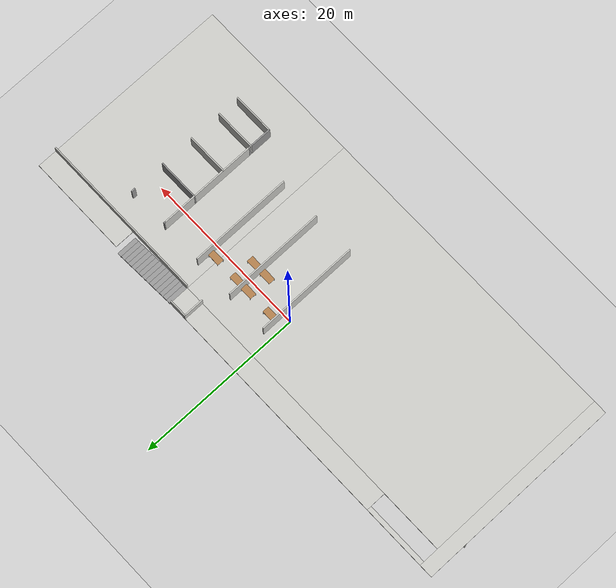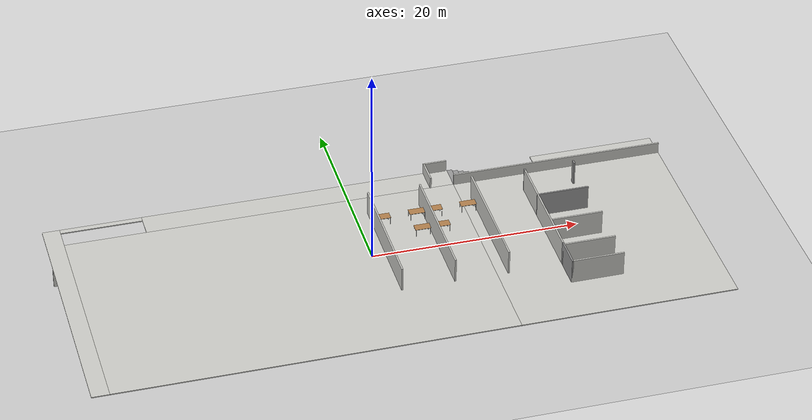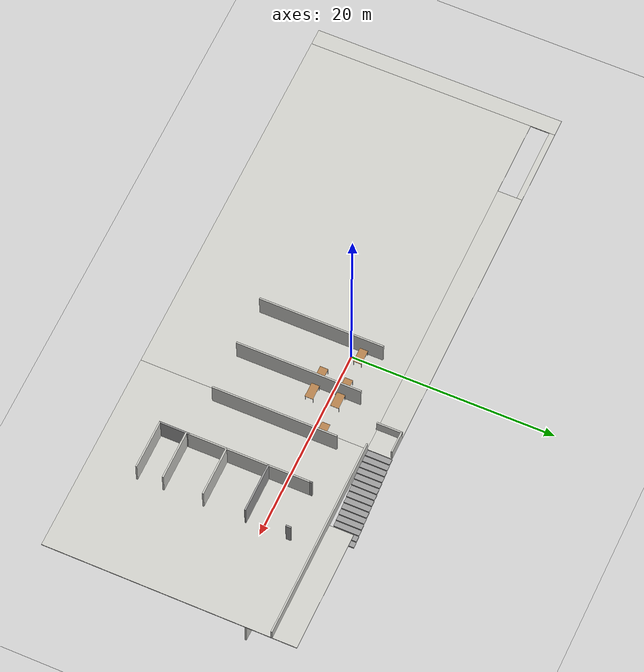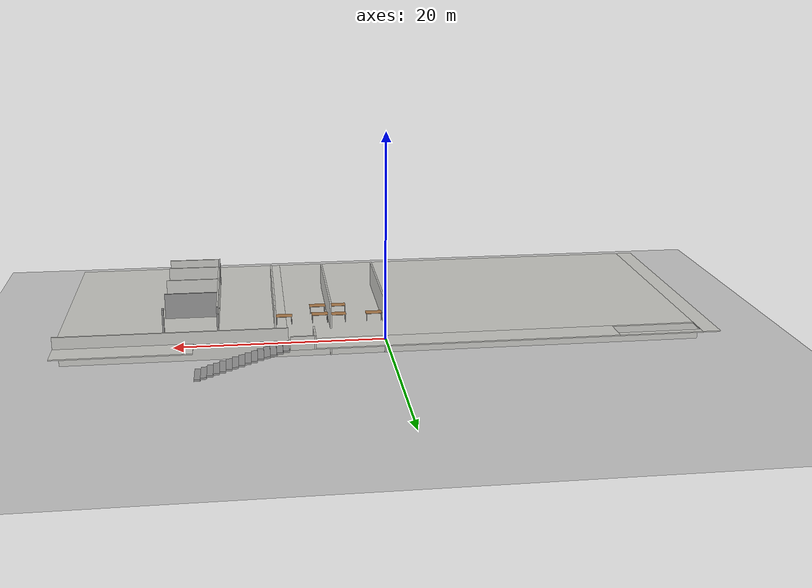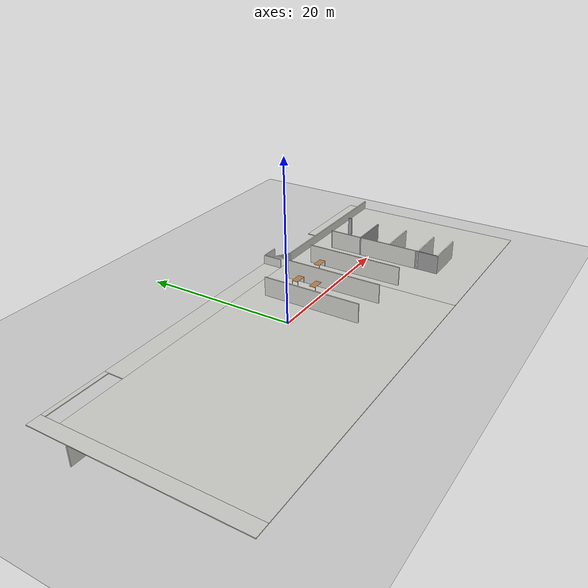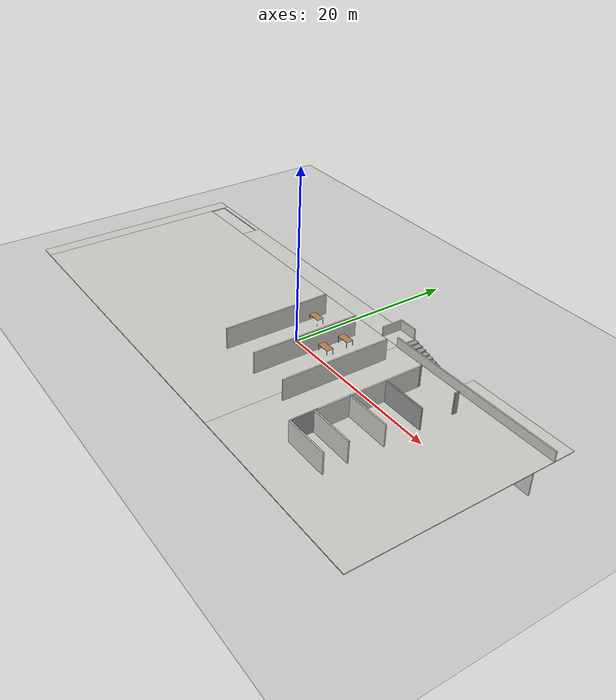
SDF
<sdf version="1.6">
 <world name="default">
  <model name="ground_plane">
   <static>1</static>
   <link name="link">
    <collision name="collision">
     <geometry><plane><normal>0 0 1</normal><size>100 100</size></plane></geometry>
     <surface>
      <contact><collide_bitmask>65535</collide_bitmask></contact>
      <friction><ode><mu>100</mu><mu2>50</mu2></ode></friction>
     </surface>
    </collision>
    <visual name="visual">
     <cast_shadows>0</cast_shadows>
     <geometry><plane><normal>0 0 1</normal><size>100 100</size></plane></geometry>
     <material>
      <script><uri>file://media/materials/scripts/gazebo.material</uri><name>Gazebo/Grey</name></script>
     </material>
    </visual>
   </link>
  </model>
  <model name="ifes_bloco_m">
   <pose>0.003818 -4.2564 0 0 -0 0</pose>
   <link name="Floor_0">
    <pose>0.157128 0.038162 2.5 0 -0 0</pose>
    <visual name="Floor_0_Visual_0">
     <pose>-28.976 0 0.05 0 -0 0</pose>
     <geometry><box><size>1.64864 24.7557 0.1</size></box></geometry>
     <material>
      <script><uri>file://media/materials/scripts/gazebo.material</uri><name>Gazebo/CeilingTiled</name></script>
      <ambient>1 1 1 1</ambient>
     </material>
     <meta><layer>1</layer></meta>
    </visual>
    <collision name="Floor_0_Collision_0">
     <geometry><box><size>1.64864 24.7557 0.1</size></box></geometry>
     <pose>-28.976 0 0.05 0 -0 0</pose>
    </collision>
    <visual name="Floor_0_Visual_1">
     <pose>-9.42841 -1.21298 0.05 0 -0 0</pose>
     <geometry><box><size>37.4466 22.3297 0.1</size></box></geometry>
     <material>
      <script><uri>file://media/materials/scripts/gazebo.material</uri><name>Gazebo/CeilingTiled</name></script>
      <ambient>1 1 1 1</ambient>
     </material>
     <meta><layer>1</layer></meta>
    </visual>
    <collision name="Floor_0_Collision_1">
     <geometry><box><size>37.4466 22.3297 0.1</size></box></geometry>
     <pose>-9.42841 -1.21298 0.05 0 -0 0</pose>
    </collision>
    <visual name="Floor_0_Visual_2">
     <pose>19.5476 -1.22768 0.05 0 -0 0</pose>
     <geometry><box><size>20.5055 22.3003 0.1</size></box></geometry>
     <material>
      <script><uri>file://media/materials/scripts/gazebo.material</uri><name>Gazebo/CeilingTiled</name></script>
      <ambient>1 1 1 1</ambient>
     </material>
     <meta><layer>1</layer></meta>
    </visual>
    <collision name="Floor_0_Collision_2">
     <geometry><box><size>20.5055 22.3003 0.1</size></box></geometry>
     <pose>19.5476 -1.22768 0.05 0 -0 0</pose>
    </collision>
    <visual name="Floor_0_Visual_3">
     <pose>23.7241 11.1502 0.05 0 -0 0</pose>
     <geometry><box><size>12.1525 2.45536 0.1</size></box></geometry>
     <material>
      <script><uri>file://media/materials/scripts/gazebo.material</uri><name>Gazebo/CeilingTiled</name></script>
      <ambient>1 1 1 1</ambient>
     </material>
     <meta><layer>1</layer></meta>
    </visual>
    <collision name="Floor_0_Collision_3">
     <geometry><box><size>12.1525 2.45536 0.1</size></box></geometry>
     <pose>23.7241 11.1502 0.05 0 -0 0</pose>
    </collision>
    <visual name="Floor_0_Visual_4">
     <pose>-5.55039 11.1649 0.05 0 -0 0</pose>
     <geometry><box><size>29.6905 2.42596 0.1</size></box></geometry>
     <material>
      <script><uri>file://media/materials/scripts/gazebo.material</uri><name>Gazebo/CeilingTiled</name></script>
      <ambient>1 1 1 1</ambient>
     </material>
     <meta><layer>1</layer></meta>
    </visual>
    <collision name="Floor_0_Collision_4">
     <geometry><box><size>29.6905 2.42596 0.1</size></box></geometry>
     <pose>-5.55039 11.1649 0.05 0 -0 0</pose>
    </collision>
    <visual name="Floor_0_Visual_5">
     <pose>-24.2737 12.1043 0.05 0 -0 0</pose>
     <geometry><box><size>7.75603 0.546998 0.1</size></box></geometry>
     <material>
      <script><uri>file://media/materials/scripts/gazebo.material</uri><name>Gazebo/CeilingTiled</name></script>
      <ambient>1 1 1 1</ambient>
     </material>
     <meta><layer>1</layer></meta>
    </visual>
    <collision name="Floor_0_Collision_5">
     <geometry><box><size>7.75603 0.546998 0.1</size></box></geometry>
     <pose>-24.2737 12.1043 0.05 0 -0 0</pose>
    </collision>
   </link>
   <link name="Stairs_1">
    <visual name="Stairs_1_Visual_0">
     <pose>17.5266 11.2024 0.083333 0 -0 -1.5708</pose>
     <geometry><box><size>2.4835 0.556867 0.166667</size></box></geometry>
     <material>
      <script><uri>file://media/materials/scripts/gazebo.material</uri><name>Gazebo/Grey</name></script>
      <ambient>1 1 1 1</ambient>
     </material>
     <meta><layer>0</layer></meta>
    </visual>
    <collision name="Stairs_1_Collision_0">
     <geometry><box><size>2.4835 0.556867 0.166667</size></box></geometry>
     <pose>17.5266 11.2024 0.083333 0 -0 -1.5708</pose>
    </collision>
    <visual name="Stairs_1_Visual_1">
     <pose>16.9697 11.2024 0.25 0 -0 -1.5708</pose>
     <geometry><box><size>2.4835 0.556867 0.166667</size></box></geometry>
     <material>
      <script><uri>file://media/materials/scripts/gazebo.material</uri><name>Gazebo/Grey</name></script>
      <ambient>1 1 1 1</ambient>
     </material>
     <meta><layer>0</layer></meta>
    </visual>
    <collision name="Stairs_1_Collision_1">
     <geometry><box><size>2.4835 0.556867 0.166667</size></box></geometry>
     <pose>16.9697 11.2024 0.25 0 -0 -1.5708</pose>
    </collision>
    <visual name="Stairs_1_Visual_2">
     <pose>16.4128 11.2024 0.416667 0 -0 -1.5708</pose>
     <geometry><box><size>2.4835 0.556867 0.166667</size></box></geometry>
     <material>
      <script><uri>file://media/materials/scripts/gazebo.material</uri><name>Gazebo/Grey</name></script>
      <ambient>1 1 1 1</ambient>
     </material>
     <meta><layer>0</layer></meta>
    </visual>
    <collision name="Stairs_1_Collision_2">
     <geometry><box><size>2.4835 0.556867 0.166667</size></box></geometry>
     <pose>16.4128 11.2024 0.416667 0 -0 -1.5708</pose>
    </collision>
    <visual name="Stairs_1_Visual_3">
     <pose>15.856 11.2024 0.583333 0 -0 -1.5708</pose>
     <geometry><box><size>2.4835 0.556867 0.166667</size></box></geometry>
     <material>
      <script><uri>file://media/materials/scripts/gazebo.material</uri><name>Gazebo/Grey</name></script>
      <ambient>1 1 1 1</ambient>
     </material>
     <meta><layer>0</layer></meta>
    </visual>
    <collision name="Stairs_1_Collision_3">
     <geometry><box><size>2.4835 0.556867 0.166667</size></box></geometry>
     <pose>15.856 11.2024 0.583333 0 -0 -1.5708</pose>
    </collision>
    <visual name="Stairs_1_Visual_4">
     <pose>15.2991 11.2024 0.75 0 -0 -1.5708</pose>
     <geometry><box><size>2.4835 0.556867 0.166667</size></box></geometry>
     <material>
      <script><uri>file://media/materials/scripts/gazebo.material</uri><name>Gazebo/Grey</name></script>
      <ambient>1 1 1 1</ambient>
     </material>
     <meta><layer>0</layer></meta>
    </visual>
    <collision name="Stairs_1_Collision_4">
     <geometry><box><size>2.4835 0.556867 0.166667</size></box></geometry>
     <pose>15.2991 11.2024 0.75 0 -0 -1.5708</pose>
    </collision>
    <visual name="Stairs_1_Visual_5">
     <pose>14.7422 11.2024 0.916667 0 -0 -1.5708</pose>
     <geometry><box><size>2.4835 0.556867 0.166667</size></box></geometry>
     <material>
      <script><uri>file://media/materials/scripts/gazebo.material</uri><name>Gazebo/Grey</name></script>
      <ambient>1 1 1 1</ambient>
     </material>
     <meta><layer>0</layer></meta>
    </visual>
    <collision name="Stairs_1_Collision_5">
     <geometry><box><size>2.4835 0.556867 0.166667</size></box></geometry>
     <pose>14.7422 11.2024 0.916667 0 -0 -1.5708</pose>
    </collision>
    <visual name="Stairs_1_Visual_6">
     <pose>14.1854 11.2024 1.08333 0 -0 -1.5708</pose>
     <geometry><box><size>2.4835 0.556867 0.166667</size></box></geometry>
     <material>
      <script><uri>file://media/materials/scripts/gazebo.material</uri><name>Gazebo/Grey</name></script>
      <ambient>1 1 1 1</ambient>
     </material>
     <meta><layer>0</layer></meta>
    </visual>
    <collision name="Stairs_1_Collision_6">
     <geometry><box><size>2.4835 0.556867 0.166667</size></box></geometry>
     <pose>14.1854 11.2024 1.08333 0 -0 -1.5708</pose>
    </collision>
    <visual name="Stairs_1_Visual_7">
     <pose>13.6285 11.2024 1.25 0 -0 -1.5708</pose>
     <geometry><box><size>2.4835 0.556867 0.166667</size></box></geometry>
     <material>
      <script><uri>file://media/materials/scripts/gazebo.material</uri><name>Gazebo/Grey</name></script>
      <ambient>1 1 1 1</ambient>
     </material>
     <meta><layer>0</layer></meta>
    </visual>
    <collision name="Stairs_1_Collision_7">
     <geometry><box><size>2.4835 0.556867 0.166667</size></box></geometry>
     <pose>13.6285 11.2024 1.25 0 -0 -1.5708</pose>
    </collision>
    <visual name="Stairs_1_Visual_8">
     <pose>13.0716 11.2024 1.41667 0 -0 -1.5708</pose>
     <geometry><box><size>2.4835 0.556867 0.166667</size></box></geometry>
     <material>
      <script><uri>file://media/materials/scripts/gazebo.material</uri><name>Gazebo/Grey</name></script>
      <ambient>1 1 1 1</ambient>
     </material>
     <meta><layer>0</layer></meta>
    </visual>
    <collision name="Stairs_1_Collision_8">
     <geometry><box><size>2.4835 0.556867 0.166667</size></box></geometry>
     <pose>13.0716 11.2024 1.41667 0 -0 -1.5708</pose>
    </collision>
    <visual name="Stairs_1_Visual_9">
     <pose>12.5148 11.2024 1.58333 0 -0 -1.5708</pose>
     <geometry><box><size>2.4835 0.556867 0.166667</size></box></geometry>
     <material>
      <script><uri>file://media/materials/scripts/gazebo.material</uri><name>Gazebo/Grey</name></script>
      <ambient>1 1 1 1</ambient>
     </material>
     <meta><layer>0</layer></meta>
    </visual>
    <collision name="Stairs_1_Collision_9">
     <geometry><box><size>2.4835 0.556867 0.166667</size></box></geometry>
     <pose>12.5148 11.2024 1.58333 0 -0 -1.5708</pose>
    </collision>
    <visual name="Stairs_1_Visual_10">
     <pose>11.9579 11.2024 1.75 0 -0 -1.5708</pose>
     <geometry><box><size>2.4835 0.556867 0.166667</size></box></geometry>
     <material>
      <script><uri>file://media/materials/scripts/gazebo.material</uri><name>Gazebo/Grey</name></script>
      <ambient>1 1 1 1</ambient>
     </material>
     <meta><layer>0</layer></meta>
    </visual>
    <collision name="Stairs_1_Collision_10">
     <geometry><box><size>2.4835 0.556867 0.166667</size></box></geometry>
     <pose>11.9579 11.2024 1.75 0 -0 -1.5708</pose>
    </collision>
    <visual name="Stairs_1_Visual_11">
     <pose>11.401 11.2024 1.91667 0 -0 -1.5708</pose>
     <geometry><box><size>2.4835 0.556867 0.166667</size></box></geometry>
     <material>
      <script><uri>file://media/materials/scripts/gazebo.material</uri><name>Gazebo/Grey</name></script>
      <ambient>1 1 1 1</ambient>
     </material>
     <meta><layer>0</layer></meta>
    </visual>
    <collision name="Stairs_1_Collision_11">
     <geometry><box><size>2.4835 0.556867 0.166667</size></box></geometry>
     <pose>11.401 11.2024 1.91667 0 -0 -1.5708</pose>
    </collision>
    <visual name="Stairs_1_Visual_12">
     <pose>10.8442 11.2024 2.08333 0 -0 -1.5708</pose>
     <geometry><box><size>2.4835 0.556867 0.166667</size></box></geometry>
     <material>
      <script><uri>file://media/materials/scripts/gazebo.material</uri><name>Gazebo/Grey</name></script>
      <ambient>1 1 1 1</ambient>
     </material>
     <meta><layer>0</layer></meta>
    </visual>
    <collision name="Stairs_1_Collision_12">
     <geometry><box><size>2.4835 0.556867 0.166667</size></box></geometry>
     <pose>10.8442 11.2024 2.08333 0 -0 -1.5708</pose>
    </collision>
    <visual name="Stairs_1_Visual_13">
     <pose>10.2873 11.2024 2.25 0 -0 -1.5708</pose>
     <geometry><box><size>2.4835 0.556867 0.166667</size></box></geometry>
     <material>
      <script><uri>file://media/materials/scripts/gazebo.material</uri><name>Gazebo/Grey</name></script>
      <ambient>1 1 1 1</ambient>
     </material>
     <meta><layer>0</layer></meta>
    </visual>
    <collision name="Stairs_1_Collision_13">
     <geometry><box><size>2.4835 0.556867 0.166667</size></box></geometry>
     <pose>10.2873 11.2024 2.25 0 -0 -1.5708</pose>
    </collision>
    <visual name="Stairs_1_Visual_14">
     <pose>9.73044 11.2024 2.41667 0 -0 -1.5708</pose>
     <geometry><box><size>2.4835 0.556867 0.166667</size></box></geometry>
     <material>
      <script><uri>file://media/materials/scripts/gazebo.material</uri><name>Gazebo/Grey</name></script>
      <ambient>1 1 1 1</ambient>
     </material>
     <meta><layer>0</layer></meta>
    </visual>
    <collision name="Stairs_1_Collision_14">
     <geometry><box><size>2.4835 0.556867 0.166667</size></box></geometry>
     <pose>9.73044 11.2024 2.41667 0 -0 -1.5708</pose>
    </collision>
   </link>
   <link name="Wall_0">
    <collision name="Wall_0_Collision">
     <geometry><box><size>59.5 0.15 2.5</size></box></geometry>
     <pose>0 0 1.25 0 -0 0</pose>
    </collision>
    <visual name="Wall_0_Visual">
     <pose>0 0 1.25 0 -0 0</pose>
     <geometry><box><size>59.5 0.15 2.5</size></box></geometry>
     <material>
      <script><uri>file://media/materials/scripts/gazebo.material</uri><name>Gazebo/CeilingTiled</name></script>
      <ambient>1 1 1 1</ambient>
     </material>
     <meta><layer>0</layer></meta>
    </visual>
    <pose>0.181948 7.4609 0 0 -0 0</pose>
   </link>
   <link name="Wall_101">
    <collision name="Wall_101_Collision">
     <geometry><box><size>5 0.15 2.5</size></box></geometry>
     <pose>0 0 1.25 0 -0 0</pose>
    </collision>
    <visual name="Wall_101_Visual">
     <pose>0 0 1.25 0 -0 0</pose>
     <geometry><box><size>5 0.15 2.5</size></box></geometry>
     <material>
      <script><uri>file://media/materials/scripts/gazebo.material</uri><name>Gazebo/CeilingTiled</name></script>
      <ambient>1 1 1 1</ambient>
     </material>
     <meta><layer>1</layer></meta>
    </visual>
    <pose>18.1581 -0.902525 2.5 0 -0 3.14159</pose>
   </link>
   <link name="Wall_110">
    <collision name="Wall_110_Collision">
     <geometry><box><size>2.5 0.15 1.25</size></box></geometry>
     <pose>0 0 0.625 0 -0 0</pose>
    </collision>
    <visual name="Wall_110_Visual">
     <pose>0 0 0.625 0 -0 0</pose>
     <geometry><box><size>2.5 0.15 1.25</size></box></geometry>
     <material>
      <script><uri>file://media/materials/scripts/gazebo.material</uri><name>Gazebo/CeilingTiled</name></script>
      <ambient>0.921569 0.807843 0.615686 1</ambient>
     </material>
     <meta><layer>1</layer></meta>
    </visual>
    <pose>7.19935 11.1661 2.5 0 -0 1.5708</pose>
   </link>
   <link name="Wall_111">
    <collision name="Wall_111_Collision">
     <geometry><box><size>2.25 0.15 1.25</size></box></geometry>
     <pose>0 0 0.625 0 -0 0</pose>
    </collision>
    <visual name="Wall_111_Visual">
     <pose>0 0 0.625 0 -0 0</pose>
     <geometry><box><size>2.25 0.15 1.25</size></box></geometry>
     <material>
      <script><uri>file://media/materials/scripts/gazebo.material</uri><name>Gazebo/CeilingTiled</name></script>
      <ambient>0.921569 0.807843 0.615686 1</ambient>
     </material>
     <meta><layer>1</layer></meta>
    </visual>
    <pose>8.24935 12.3411 2.5 0 -0 0</pose>
   </link>
   <link name="Wall_115">
    <collision name="Wall_115_Collision">
     <geometry><box><size>20.5 0.15 1.2</size></box></geometry>
     <pose>0 0 0.6 0 -0 0</pose>
    </collision>
    <visual name="Wall_115_Visual">
     <pose>0 0 0.6 0 -0 0</pose>
     <geometry><box><size>20.5 0.15 1.2</size></box></geometry>
     <material>
      <script><uri>file://media/materials/scripts/gazebo.material</uri><name>Gazebo/CeilingTiled</name></script>
      <ambient>0.921569 0.807843 0.615686 1</ambient>
     </material>
     <meta><layer>1</layer></meta>
    </visual>
    <pose>19.7014 9.98264 2.5 0 -0 -0.000737</pose>
   </link>
   <link name="Wall_159">
    <collision name="Wall_159_Collision">
     <geometry><box><size>0.5 0.15 2.5</size></box></geometry>
     <pose>0 0 1.25 0 -0 0</pose>
    </collision>
    <visual name="Wall_159_Visual">
     <pose>0 0 1.25 0 -0 0</pose>
     <geometry><box><size>0.5 0.15 2.5</size></box></geometry>
     <material>
      <script><uri>file://media/materials/scripts/gazebo.material</uri><name>Gazebo/Grey</name></script>
      <ambient>1 1 1 1</ambient>
     </material>
     <meta><layer>1</layer></meta>
    </visual>
    <pose>20.5318 7.34297 2.5 0 -0 -1.5708</pose>
   </link>
   <link name="Wall_28">
    <collision name="Wall_28_Collision">
     <geometry><box><size>0.5 0.15 2.5</size></box></geometry>
     <pose>0 0 1.25 0 -0 0</pose>
    </collision>
    <visual name="Wall_28_Visual">
     <pose>0 0 1.25 0 -0 0</pose>
     <geometry><box><size>0.5 0.15 2.5</size></box></geometry>
     <material>
      <script><uri>file://media/materials/scripts/gazebo.material</uri><name>Gazebo/Grey</name></script>
      <ambient>1 1 1 1</ambient>
     </material>
     <meta><layer>0</layer></meta>
    </visual>
    <pose>15.6425 -7.18425 0 0 -0 0</pose>
   </link>
   <link name="Wall_29">
    <collision name="Wall_29_Collision">
     <geometry><box><size>6 0.15 2.5</size></box></geometry>
     <pose>0 0 1.25 0 -0 0</pose>
    </collision>
    <visual name="Wall_29_Visual">
     <pose>0 0 1.25 0 -0 0</pose>
     <geometry><box><size>6 0.15 2.5</size></box></geometry>
     <material>
      <script><uri>file://media/materials/scripts/gazebo.material</uri><name>Gazebo/CeilingTiled</name></script>
      <ambient>1 1 1 1</ambient>
     </material>
     <meta><layer>0</layer></meta>
    </visual>
    <pose>18.7425 -7.18425 0 0 -0 0</pose>
   </link>
   <link name="Wall_36">
    <collision name="Wall_36_Collision">
     <geometry><box><size>12 0.15 2.5</size></box></geometry>
     <pose>0 0 1.25 0 -0 0</pose>
    </collision>
    <visual name="Wall_36_Visual">
     <pose>0 0 1.25 0 -0 0</pose>
     <geometry><box><size>12 0.15 2.5</size></box></geometry>
     <material>
      <script><uri>file://media/materials/scripts/gazebo.material</uri><name>Gazebo/CeilingTiled</name></script>
      <ambient>1 1 1 1</ambient>
     </material>
     <meta><layer>0</layer></meta>
    </visual>
    <pose>15.6938 1.3493 0 0 -0 1.5708</pose>
   </link>
   <link name="Wall_37">
    <collision name="Wall_37_Collision">
     <geometry><box><size>0.25 0.15 2.5</size></box></geometry>
     <pose>0 0 1.25 0 -0 0</pose>
    </collision>
    <visual name="Wall_37_Visual">
     <pose>0 0 1.25 0 -0 0</pose>
     <geometry><box><size>0.25 0.15 2.5</size></box></geometry>
     <material>
      <script><uri>file://media/materials/scripts/gazebo.material</uri><name>Gazebo/Grey</name></script>
      <ambient>1 1 1 1</ambient>
     </material>
     <meta><layer>0</layer></meta>
    </visual>
    <pose>15.6938 7.3243 0 0 -0 1.5708</pose>
   </link>
   <link name="Wall_39">
    <collision name="Wall_39_Collision">
     <geometry><box><size>12.25 0.15 2.5</size></box></geometry>
     <pose>0 0 1.25 0 -0 0</pose>
    </collision>
    <visual name="Wall_39_Visual">
     <pose>0 0 1.25 0 -0 0</pose>
     <geometry><box><size>12.25 0.15 2.5</size></box></geometry>
     <material>
      <script><uri>file://media/materials/scripts/gazebo.material</uri><name>Gazebo/CeilingTiled</name></script>
      <ambient>1 1 1 1</ambient>
     </material>
     <meta><layer>0</layer></meta>
    </visual>
    <pose>10.5217 1.4187 0 0 -0 -1.5708</pose>
   </link>
   <link name="Wall_41">
    <collision name="Wall_41_Collision">
     <geometry><box><size>12.25 0.15 2.5</size></box></geometry>
     <pose>0 0 1.25 0 -0 0</pose>
    </collision>
    <visual name="Wall_41_Visual">
     <pose>0 0 1.25 0 -0 0</pose>
     <geometry><box><size>12.25 0.15 2.5</size></box></geometry>
     <material>
      <script><uri>file://media/materials/scripts/gazebo.material</uri><name>Gazebo/CeilingTiled</name></script>
      <ambient>1 1 1 1</ambient>
     </material>
     <meta><layer>0</layer></meta>
    </visual>
    <pose>5.47302 1.49457 0 0 -0 1.5708</pose>
   </link>
   <link name="Wall_43">
    <collision name="Wall_43_Collision">
     <geometry><box><size>12.25 0.15 2.5</size></box></geometry>
     <pose>0 0 1.25 0 -0 0</pose>
    </collision>
    <visual name="Wall_43_Visual">
     <pose>0 0 1.25 0 -0 0</pose>
     <geometry><box><size>12.25 0.15 2.5</size></box></geometry>
     <material>
      <script><uri>file://media/materials/scripts/gazebo.material</uri><name>Gazebo/CeilingTiled</name></script>
      <ambient>1 1 1 1</ambient>
     </material>
     <meta><layer>0</layer></meta>
    </visual>
    <pose>0.445579 1.47106 0 0 -0 -1.5708</pose>
   </link>
   <link name="Wall_80">
    <collision name="Wall_80_Collision">
     <geometry><box><size>12 0.15 2.5</size></box></geometry>
     <pose>0 0 1.25 0 -0 0</pose>
    </collision>
    <visual name="Wall_80_Visual">
     <pose>0 0 1.25 0 -0 0</pose>
     <geometry><box><size>12 0.15 2.5</size></box></geometry>
     <material>
      <script><uri>file://media/materials/scripts/gazebo.material</uri><name>Gazebo/CeilingTiled</name></script>
      <ambient>1 1 1 1</ambient>
     </material>
     <meta><layer>1</layer></meta>
    </visual>
    <pose>15.6938 1.3493 2.5 0 -0 1.5708</pose>
   </link>
   <link name="Wall_81">
    <collision name="Wall_81_Collision">
     <geometry><box><size>0.25 0.15 2.5</size></box></geometry>
     <pose>0 0 1.25 0 -0 0</pose>
    </collision>
    <visual name="Wall_81_Visual">
     <pose>0 0 1.25 0 -0 0</pose>
     <geometry><box><size>0.25 0.15 2.5</size></box></geometry>
     <material>
      <script><uri>file://media/materials/scripts/gazebo.material</uri><name>Gazebo/Grey</name></script>
      <ambient>1 1 1 1</ambient>
     </material>
     <meta><layer>1</layer></meta>
    </visual>
    <pose>15.6938 7.3243 2.5 0 -0 1.5708</pose>
   </link>
   <link name="Wall_82">
    <collision name="Wall_82_Collision">
     <geometry><box><size>12.25 0.15 2.5</size></box></geometry>
     <pose>0 0 1.25 0 -0 0</pose>
    </collision>
    <visual name="Wall_82_Visual">
     <pose>0 0 1.25 0 -0 0</pose>
     <geometry><box><size>12.25 0.15 2.5</size></box></geometry>
     <material>
      <script><uri>file://media/materials/scripts/gazebo.material</uri><name>Gazebo/CeilingTiled</name></script>
      <ambient>1 1 1 1</ambient>
     </material>
     <meta><layer>1</layer></meta>
    </visual>
    <pose>10.5217 1.4187 2.5 0 -0 -1.5708</pose>
   </link>
   <link name="Wall_83">
    <collision name="Wall_83_Collision">
     <geometry><box><size>12.25 0.15 2.5</size></box></geometry>
     <pose>0 0 1.25 0 -0 0</pose>
    </collision>
    <visual name="Wall_83_Visual">
     <pose>0 0 1.25 0 -0 0</pose>
     <geometry><box><size>12.25 0.15 2.5</size></box></geometry>
     <material>
      <script><uri>file://media/materials/scripts/gazebo.material</uri><name>Gazebo/CeilingTiled</name></script>
      <ambient>1 1 1 1</ambient>
     </material>
     <meta><layer>1</layer></meta>
    </visual>
    <pose>5.47302 1.49457 2.5 0 -0 1.5708</pose>
   </link>
   <link name="Wall_84">
    <collision name="Wall_84_Collision">
     <geometry><box><size>12.25 0.15 2.5</size></box></geometry>
     <pose>0 0 1.25 0 -0 0</pose>
    </collision>
    <visual name="Wall_84_Visual">
     <pose>0 0 1.25 0 -0 0</pose>
     <geometry><box><size>12.25 0.15 2.5</size></box></geometry>
     <material>
      <script><uri>file://media/materials/scripts/gazebo.material</uri><name>Gazebo/CeilingTiled</name></script>
      <ambient>1 1 1 1</ambient>
     </material>
     <meta><layer>1</layer></meta>
    </visual>
    <pose>0.445579 1.47106 2.5 0 -0 -1.5708</pose>
   </link>
   <link name="Wall_91">
    <collision name="Wall_91_Collision">
     <geometry><box><size>3 0.15 2.5</size></box></geometry>
     <pose>0 0 1.25 0 -0 0</pose>
    </collision>
    <visual name="Wall_91_Visual">
     <pose>0 0 1.25 0 -0 0</pose>
     <geometry><box><size>3 0.15 2.5</size></box></geometry>
     <material>
      <script><uri>file://media/materials/scripts/gazebo.material</uri><name>Gazebo/Grey</name></script>
      <ambient>1 1 1 1</ambient>
     </material>
     <meta><layer>1</layer></meta>
    </visual>
    <pose>15.6938 -6.0007 2.5 0 -0 -1.5708</pose>
   </link>
   <link name="Wall_92">
    <collision name="Wall_92_Collision">
     <geometry><box><size>5 0.15 2.5</size></box></geometry>
     <pose>0 0 1.25 0 -0 0</pose>
    </collision>
    <visual name="Wall_92_Visual">
     <pose>0 0 1.25 0 -0 0</pose>
     <geometry><box><size>5 0.15 2.5</size></box></geometry>
     <material>
      <script><uri>file://media/materials/scripts/gazebo.material</uri><name>Gazebo/CeilingTiled</name></script>
      <ambient>1 1 1 1</ambient>
     </material>
     <meta><layer>1</layer></meta>
    </visual>
    <pose>18.1188 -7.4257 2.5 0 -0 0</pose>
   </link>
   <link name="Wall_94">
    <collision name="Wall_94_Collision">
     <geometry><box><size>5 0.15 2.5</size></box></geometry>
     <pose>0 0 1.25 0 -0 0</pose>
    </collision>
    <visual name="Wall_94_Visual">
     <pose>0 0 1.25 0 -0 0</pose>
     <geometry><box><size>5 0.15 2.5</size></box></geometry>
     <material>
      <script><uri>file://media/materials/scripts/gazebo.material</uri><name>Gazebo/CeilingTiled</name></script>
      <ambient>1 1 1 1</ambient>
     </material>
     <meta><layer>1</layer></meta>
    </visual>
    <pose>18.1188 -4.8257 2.5 0 -0 3.14159</pose>
   </link>
   <link name="Wall_98">
    <collision name="Wall_98_Collision">
     <geometry><box><size>5 0.15 2.5</size></box></geometry>
     <pose>0 0 1.25 0 -0 0</pose>
    </collision>
    <visual name="Wall_98_Visual">
     <pose>0 0 1.25 0 -0 0</pose>
     <geometry><box><size>5 0.15 2.5</size></box></geometry>
     <material>
      <script><uri>file://media/materials/scripts/gazebo.material</uri><name>Gazebo/Grey</name></script>
      <ambient>1 1 1 1</ambient>
     </material>
     <meta><layer>1</layer></meta>
    </visual>
    <pose>18.1176 3.18349 2.5 0 -0 3.14159</pose>
   </link>
   <static>1</static>
  </model>
  <model name="table">
   <static>1</static>
   <link name="link">
    <collision name="surface">
     <pose>0 0 1 0 -0 0</pose>
     <geometry><box><size>1.5 0.8 0.03</size></box></geometry>
     <surface><friction><ode><mu>0.6</mu><mu2>0.6</mu2></ode></friction></surface>
    </collision>
    <visual name="visual1">
     <pose>0 0 1 0 -0 0</pose>
     <geometry><box><size>1.5 0.8 0.03</size></box></geometry>
     <material>
      <script><uri>file://media/materials/scripts/gazebo.material</uri><name>Gazebo/Wood</name></script>
     </material>
    </visual>
    <collision name="front_left_leg">
     <pose>0.68 0.38 0.5 0 -0 0</pose>
     <geometry><cylinder><radius>0.02</radius><length>1</length></cylinder></geometry>
    </collision>
    <visual name="front_left_leg">
     <pose>0.68 0.38 0.5 0 -0 0</pose>
     <geometry><cylinder><radius>0.02</radius><length>1</length></cylinder></geometry>
     <material>
      <script><uri>file://media/materials/scripts/gazebo.material</uri><name>Gazebo/Grey</name></script>
     </material>
    </visual>
    <collision name="front_right_leg">
     <pose>0.68 -0.38 0.5 0 -0 0</pose>
     <geometry><cylinder><radius>0.02</radius><length>1</length></cylinder></geometry>
    </collision>
    <visual name="front_right_leg">
     <pose>0.68 -0.38 0.5 0 -0 0</pose>
     <geometry><cylinder><radius>0.02</radius><length>1</length></cylinder></geometry>
     <material>
      <script><uri>file://media/materials/scripts/gazebo.material</uri><name>Gazebo/Grey</name></script>
     </material>
    </visual>
    <collision name="back_right_leg">
     <pose>-0.68 -0.38 0.5 0 -0 0</pose>
     <geometry><cylinder><radius>0.02</radius><length>1</length></cylinder></geometry>
    </collision>
    <visual name="back_right_leg">
     <pose>-0.68 -0.38 0.5 0 -0 0</pose>
     <geometry><cylinder><radius>0.02</radius><length>1</length></cylinder></geometry>
     <material>
      <script><uri>file://media/materials/scripts/gazebo.material</uri><name>Gazebo/Grey</name></script>
     </material>
    </visual>
    <collision name="back_left_leg">
     <pose>-0.68 0.38 0.5 0 -0 0</pose>
     <geometry><cylinder><radius>0.02</radius><length>1</length></cylinder></geometry>
    </collision>
    <visual name="back_left_leg">
     <pose>-0.68 0.38 0.5 0 -0 0</pose>
     <geometry><cylinder><radius>0.02</radius><length>1</length></cylinder></geometry>
     <material>
      <script><uri>file://media/materials/scripts/gazebo.material</uri><name>Gazebo/Grey</name></script>
     </material>
    </visual>
   </link>
   <pose>6.36481 1.5 2.3696 0 -0 0</pose>
  </model>
  <model name="table_clone">
   <static>1</static>
   <link name="link">
    <collision name="surface">
     <pose>0 0 1 0 -0 0</pose>
     <geometry><box><size>1.5 0.8 0.03</size></box></geometry>
     <surface><friction><ode><mu>0.6</mu><mu2>0.6</mu2></ode></friction></surface>
    </collision>
    <visual name="visual1">
     <pose>0 0 1 0 -0 0</pose>
     <geometry><box><size>1.5 0.8 0.03</size></box></geometry>
     <material>
      <script><uri>file://media/materials/scripts/gazebo.material</uri><name>Gazebo/Wood</name></script>
     </material>
    </visual>
    <collision name="front_left_leg">
     <pose>0.68 0.38 0.5 0 -0 0</pose>
     <geometry><cylinder><radius>0.02</radius><length>1</length></cylinder></geometry>
    </collision>
    <visual name="front_left_leg">
     <pose>0.68 0.38 0.5 0 -0 0</pose>
     <geometry><cylinder><radius>0.02</radius><length>1</length></cylinder></geometry>
     <material>
      <script><uri>file://media/materials/scripts/gazebo.material</uri><name>Gazebo/Grey</name></script>
     </material>
    </visual>
    <collision name="front_right_leg">
     <pose>0.68 -0.38 0.5 0 -0 0</pose>
     <geometry><cylinder><radius>0.02</radius><length>1</length></cylinder></geometry>
    </collision>
    <visual name="front_right_leg">
     <pose>0.68 -0.38 0.5 0 -0 0</pose>
     <geometry><cylinder><radius>0.02</radius><length>1</length></cylinder></geometry>
     <material>
      <script><uri>file://media/materials/scripts/gazebo.material</uri><name>Gazebo/Grey</name></script>
     </material>
    </visual>
    <collision name="back_right_leg">
     <pose>-0.68 -0.38 0.5 0 -0 0</pose>
     <geometry><cylinder><radius>0.02</radius><length>1</length></cylinder></geometry>
    </collision>
    <visual name="back_right_leg">
     <pose>-0.68 -0.38 0.5 0 -0 0</pose>
     <geometry><cylinder><radius>0.02</radius><length>1</length></cylinder></geometry>
     <material>
      <script><uri>file://media/materials/scripts/gazebo.material</uri><name>Gazebo/Grey</name></script>
     </material>
    </visual>
    <collision name="back_left_leg">
     <pose>-0.68 0.38 0.5 0 -0 0</pose>
     <geometry><cylinder><radius>0.02</radius><length>1</length></cylinder></geometry>
    </collision>
    <visual name="back_left_leg">
     <pose>-0.68 0.38 0.5 0 -0 0</pose>
     <geometry><cylinder><radius>0.02</radius><length>1</length></cylinder></geometry>
     <material>
      <script><uri>file://media/materials/scripts/gazebo.material</uri><name>Gazebo/Grey</name></script>
     </material>
    </visual>
   </link>
   <pose>9.66284 1.5 2.32839 0 -0 0</pose>
  </model>
  <model name="table_clone_clone">
   <static>1</static>
   <link name="link">
    <collision name="surface">
     <pose>0 0 1 0 -0 0</pose>
     <geometry><box><size>1.5 0.8 0.03</size></box></geometry>
     <surface><friction><ode><mu>0.6</mu><mu2>0.6</mu2></ode></friction></surface>
    </collision>
    <visual name="visual1">
     <pose>0 0 1 0 -0 0</pose>
     <geometry><box><size>1.5 0.8 0.03</size></box></geometry>
     <material>
      <script><uri>file://media/materials/scripts/gazebo.material</uri><name>Gazebo/Wood</name></script>
     </material>
    </visual>
    <collision name="front_left_leg">
     <pose>0.68 0.38 0.5 0 -0 0</pose>
     <geometry><cylinder><radius>0.02</radius><length>1</length></cylinder></geometry>
    </collision>
    <visual name="front_left_leg">
     <pose>0.68 0.38 0.5 0 -0 0</pose>
     <geometry><cylinder><radius>0.02</radius><length>1</length></cylinder></geometry>
     <material>
      <script><uri>file://media/materials/scripts/gazebo.material</uri><name>Gazebo/Grey</name></script>
     </material>
    </visual>
    <collision name="front_right_leg">
     <pose>0.68 -0.38 0.5 0 -0 0</pose>
     <geometry><cylinder><radius>0.02</radius><length>1</length></cylinder></geometry>
    </collision>
    <visual name="front_right_leg">
     <pose>0.68 -0.38 0.5 0 -0 0</pose>
     <geometry><cylinder><radius>0.02</radius><length>1</length></cylinder></geometry>
     <material>
      <script><uri>file://media/materials/scripts/gazebo.material</uri><name>Gazebo/Grey</name></script>
     </material>
    </visual>
    <collision name="back_right_leg">
     <pose>-0.68 -0.38 0.5 0 -0 0</pose>
     <geometry><cylinder><radius>0.02</radius><length>1</length></cylinder></geometry>
    </collision>
    <visual name="back_right_leg">
     <pose>-0.68 -0.38 0.5 0 -0 0</pose>
     <geometry><cylinder><radius>0.02</radius><length>1</length></cylinder></geometry>
     <material>
      <script><uri>file://media/materials/scripts/gazebo.material</uri><name>Gazebo/Grey</name></script>
     </material>
    </visual>
    <collision name="back_left_leg">
     <pose>-0.68 0.38 0.5 0 -0 0</pose>
     <geometry><cylinder><radius>0.02</radius><length>1</length></cylinder></geometry>
    </collision>
    <visual name="back_left_leg">
     <pose>-0.68 0.38 0.5 0 -0 0</pose>
     <geometry><cylinder><radius>0.02</radius><length>1</length></cylinder></geometry>
     <material>
      <script><uri>file://media/materials/scripts/gazebo.material</uri><name>Gazebo/Grey</name></script>
     </material>
    </visual>
   </link>
   <pose>6.42239 -1 2.32839 0 -0 0</pose>
  </model>
  <model name="table_clone_clone_0">
   <static>1</static>
   <link name="link">
    <collision name="surface">
     <pose>0 0 1 0 -0 0</pose>
     <geometry><box><size>1.5 0.8 0.03</size></box></geometry>
     <surface><friction><ode><mu>0.6</mu><mu2>0.6</mu2></ode></friction></surface>
    </collision>
    <visual name="visual1">
     <pose>0 0 1 0 -0 0</pose>
     <geometry><box><size>1.5 0.8 0.03</size></box></geometry>
     <material>
      <script><uri>file://media/materials/scripts/gazebo.material</uri><name>Gazebo/Wood</name></script>
     </material>
    </visual>
    <collision name="front_left_leg">
     <pose>0.68 0.38 0.5 0 -0 0</pose>
     <geometry><cylinder><radius>0.02</radius><length>1</length></cylinder></geometry>
    </collision>
    <visual name="front_left_leg">
     <pose>0.68 0.38 0.5 0 -0 0</pose>
     <geometry><cylinder><radius>0.02</radius><length>1</length></cylinder></geometry>
     <material>
      <script><uri>file://media/materials/scripts/gazebo.material</uri><name>Gazebo/Grey</name></script>
     </material>
    </visual>
    <collision name="front_right_leg">
     <pose>0.68 -0.38 0.5 0 -0 0</pose>
     <geometry><cylinder><radius>0.02</radius><length>1</length></cylinder></geometry>
    </collision>
    <visual name="front_right_leg">
     <pose>0.68 -0.38 0.5 0 -0 0</pose>
     <geometry><cylinder><radius>0.02</radius><length>1</length></cylinder></geometry>
     <material>
      <script><uri>file://media/materials/scripts/gazebo.material</uri><name>Gazebo/Grey</name></script>
     </material>
    </visual>
    <collision name="back_right_leg">
     <pose>-0.68 -0.38 0.5 0 -0 0</pose>
     <geometry><cylinder><radius>0.02</radius><length>1</length></cylinder></geometry>
    </collision>
    <visual name="back_right_leg">
     <pose>-0.68 -0.38 0.5 0 -0 0</pose>
     <geometry><cylinder><radius>0.02</radius><length>1</length></cylinder></geometry>
     <material>
      <script><uri>file://media/materials/scripts/gazebo.material</uri><name>Gazebo/Grey</name></script>
     </material>
    </visual>
    <collision name="back_left_leg">
     <pose>-0.68 0.38 0.5 0 -0 0</pose>
     <geometry><cylinder><radius>0.02</radius><length>1</length></cylinder></geometry>
    </collision>
    <visual name="back_left_leg">
     <pose>-0.68 0.38 0.5 0 -0 0</pose>
     <geometry><cylinder><radius>0.02</radius><length>1</length></cylinder></geometry>
     <material>
      <script><uri>file://media/materials/scripts/gazebo.material</uri><name>Gazebo/Grey</name></script>
     </material>
    </visual>
   </link>
   <pose>4.67898 1.5 2.32839 0 -0 0</pose>
  </model>
  <model name="table_clone_clone_1">
   <static>1</static>
   <link name="link">
    <collision name="surface">
     <pose>0 0 1 0 -0 0</pose>
     <geometry><box><size>1.5 0.8 0.03</size></box></geometry>
     <surface><friction><ode><mu>0.6</mu><mu2>0.6</mu2></ode></friction></surface>
    </collision>
    <visual name="visual1">
     <pose>0 0 1 0 -0 0</pose>
     <geometry><box><size>1.5 0.8 0.03</size></box></geometry>
     <material>
      <script><uri>file://media/materials/scripts/gazebo.material</uri><name>Gazebo/Wood</name></script>
     </material>
    </visual>
    <collision name="front_left_leg">
     <pose>0.68 0.38 0.5 0 -0 0</pose>
     <geometry><cylinder><radius>0.02</radius><length>1</length></cylinder></geometry>
    </collision>
    <visual name="front_left_leg">
     <pose>0.68 0.38 0.5 0 -0 0</pose>
     <geometry><cylinder><radius>0.02</radius><length>1</length></cylinder></geometry>
     <material>
      <script><uri>file://media/materials/scripts/gazebo.material</uri><name>Gazebo/Grey</name></script>
     </material>
    </visual>
    <collision name="front_right_leg">
     <pose>0.68 -0.38 0.5 0 -0 0</pose>
     <geometry><cylinder><radius>0.02</radius><length>1</length></cylinder></geometry>
    </collision>
    <visual name="front_right_leg">
     <pose>0.68 -0.38 0.5 0 -0 0</pose>
     <geometry><cylinder><radius>0.02</radius><length>1</length></cylinder></geometry>
     <material>
      <script><uri>file://media/materials/scripts/gazebo.material</uri><name>Gazebo/Grey</name></script>
     </material>
    </visual>
    <collision name="back_right_leg">
     <pose>-0.68 -0.38 0.5 0 -0 0</pose>
     <geometry><cylinder><radius>0.02</radius><length>1</length></cylinder></geometry>
    </collision>
    <visual name="back_right_leg">
     <pose>-0.68 -0.38 0.5 0 -0 0</pose>
     <geometry><cylinder><radius>0.02</radius><length>1</length></cylinder></geometry>
     <material>
      <script><uri>file://media/materials/scripts/gazebo.material</uri><name>Gazebo/Grey</name></script>
     </material>
    </visual>
    <collision name="back_left_leg">
     <pose>-0.68 0.38 0.5 0 -0 0</pose>
     <geometry><cylinder><radius>0.02</radius><length>1</length></cylinder></geometry>
    </collision>
    <visual name="back_left_leg">
     <pose>-0.68 0.38 0.5 0 -0 0</pose>
     <geometry><cylinder><radius>0.02</radius><length>1</length></cylinder></geometry>
     <material>
      <script><uri>file://media/materials/scripts/gazebo.material</uri><name>Gazebo/Grey</name></script>
     </material>
    </visual>
   </link>
   <pose>1.3429 1.5 2.32839 0 -0 0</pose>
  </model>
  <model name="table_clone_clone_clone">
   <static>1</static>
   <link name="link">
    <collision name="surface">
     <pose>0 0 1 0 -0 0</pose>
     <geometry><box><size>1.5 0.8 0.03</size></box></geometry>
     <surface><friction><ode><mu>0.6</mu><mu2>0.6</mu2></ode></friction></surface>
    </collision>
    <visual name="visual1">
     <pose>0 0 1 0 -0 0</pose>
     <geometry><box><size>1.5 0.8 0.03</size></box></geometry>
     <material>
      <script><uri>file://media/materials/scripts/gazebo.material</uri><name>Gazebo/Wood</name></script>
     </material>
    </visual>
    <collision name="front_left_leg">
     <pose>0.68 0.38 0.5 0 -0 0</pose>
     <geometry><cylinder><radius>0.02</radius><length>1</length></cylinder></geometry>
    </collision>
    <visual name="front_left_leg">
     <pose>0.68 0.38 0.5 0 -0 0</pose>
     <geometry><cylinder><radius>0.02</radius><length>1</length></cylinder></geometry>
     <material>
      <script><uri>file://media/materials/scripts/gazebo.material</uri><name>Gazebo/Grey</name></script>
     </material>
    </visual>
    <collision name="front_right_leg">
     <pose>0.68 -0.38 0.5 0 -0 0</pose>
     <geometry><cylinder><radius>0.02</radius><length>1</length></cylinder></geometry>
    </collision>
    <visual name="front_right_leg">
     <pose>0.68 -0.38 0.5 0 -0 0</pose>
     <geometry><cylinder><radius>0.02</radius><length>1</length></cylinder></geometry>
     <material>
      <script><uri>file://media/materials/scripts/gazebo.material</uri><name>Gazebo/Grey</name></script>
     </material>
    </visual>
    <collision name="back_right_leg">
     <pose>-0.68 -0.38 0.5 0 -0 0</pose>
     <geometry><cylinder><radius>0.02</radius><length>1</length></cylinder></geometry>
    </collision>
    <visual name="back_right_leg">
     <pose>-0.68 -0.38 0.5 0 -0 0</pose>
     <geometry><cylinder><radius>0.02</radius><length>1</length></cylinder></geometry>
     <material>
      <script><uri>file://media/materials/scripts/gazebo.material</uri><name>Gazebo/Grey</name></script>
     </material>
    </visual>
    <collision name="back_left_leg">
     <pose>-0.68 0.38 0.5 0 -0 0</pose>
     <geometry><cylinder><radius>0.02</radius><length>1</length></cylinder></geometry>
    </collision>
    <visual name="back_left_leg">
     <pose>-0.68 0.38 0.5 0 -0 0</pose>
     <geometry><cylinder><radius>0.02</radius><length>1</length></cylinder></geometry>
     <material>
      <script><uri>file://media/materials/scripts/gazebo.material</uri><name>Gazebo/Grey</name></script>
     </material>
    </visual>
   </link>
   <pose>4.53385 -1 2.32839 0 -0 0</pose>
  </model>
 </world>
</sdf>
